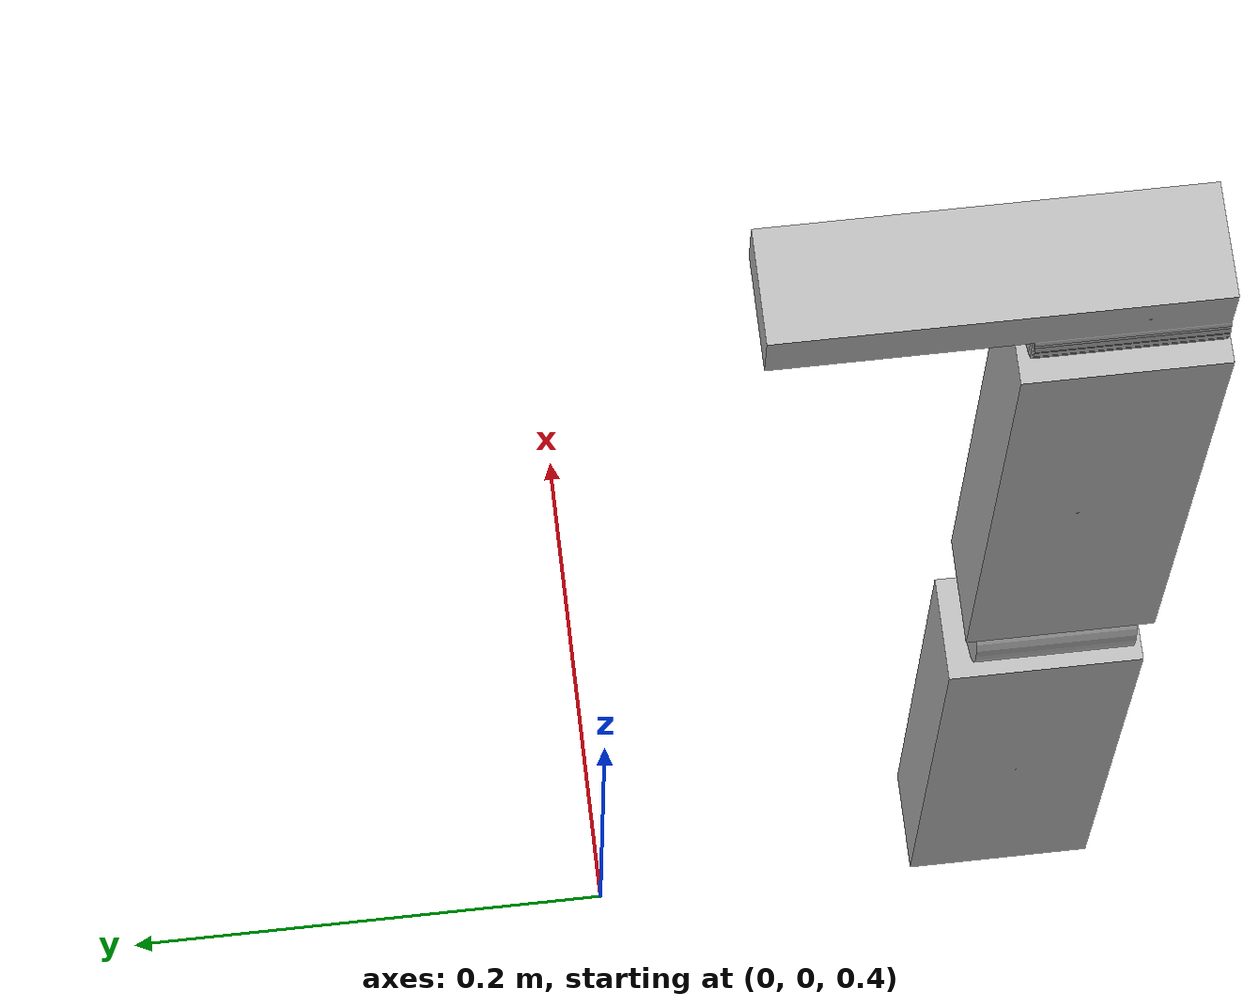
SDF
<?xml version="1.0" ?>
<sdf version="1.6">
	<model name="Arm">
		<link name="lowerArm">
			<self_collide>false</self_collide>
			<pose frame="">0.0 -0.16341575352272517 0.5946287977671405 0.0 -0.0 0.0</pose>
			<inertial>
				<pose frame="">0.0 0.0 0.0 0 0 0</pose>
				<mass>6.080200813641378</mass>
				<inertia>
					<ixx>2.3511051267027603</ixx>
					<ixy>-1.2940404303662944e-18</ixy>
					<ixz>0.00590953764285824</ixz>
					<iyy>2.1868753098141194</iyy>
					<iyz>-7.139533408917487e-19</iyz>
					<izz>0.16581174537619395</izz>
				</inertia>
			</inertial>
			<visual name="lowerArm_visual">
				<geometry>
					<mesh>
						<uri>model://Arm/meshes/CAD/lowerArm.stl</uri>
						<scale>0.001 0.001 0.001</scale>
					</mesh>
				</geometry>
			</visual>
		</link>
		<link name="upperArm">
			<self_collide>false</self_collide>
			<pose frame="">-1.7055765121060407e-19 -0.1650106746881686 0.861734873884391 0.0 -0.0 0.0</pose>
			<inertial>
				<pose frame="">0.0 0.0 0.0 0 0 0</pose>
				<mass>6.540615957274627</mass>
				<inertia>
					<ixx>5.087882934773361</ixx>
					<ixy>1.3386625141720287e-19</ixy>
					<ixz>0.009300558157396544</ixz>
					<iyy>4.908041387324462</iyy>
					<iyz>2.454214609315386e-19</iyz>
					<izz>0.18149079140871663</izz>
				</inertia>
			</inertial>
			<visual name="upperArm_visual">
				<geometry>
					<mesh>
						<uri>model://Arm/meshes/CAD/upperArm.stl</uri>
						<scale>0.001 0.001 0.001</scale>
					</mesh>
				</geometry>
			</visual>
		</link>
		<link name="chest">
			<self_collide>false</self_collide>
			<pose frame="">-7.731645312548676e-19 -0.13419849355806698 1.0258472745100917 0.0 -0.0 0.0</pose>
			<inertial>
				<pose frame="">0.0 0.0 0.0 0 0 0</pose>
				<mass>1.4428392018097171</mass>
				<inertia>
					<ixx>1.5473210686112024</ixx>
					<ixy>-1.7848833522293717e-19</ixy>
					<ixz>0.0019824514637570294</ixz>
					<iyy>1.518859157485383</iyy>
					<iyz>1.227107304657693e-18</iyz>
					<izz>0.028791206346931466</izz>
				</inertia>
			</inertial>
			<visual name="chest_visual">
				<geometry>
					<mesh>
						<uri>model://Arm/meshes/CAD/chest.stl</uri>
						<scale>0.001 0.001 0.001</scale>
					</mesh>
				</geometry>
			</visual>
		</link>
		<joint name="offset" type="fixed">
		  <parent>world</parent>
		  <child>chest</child>
		</joint>
		<joint name="shoulder" type="revolute">
			<parent>chest</parent>
			<child>upperArm</child>
			<pose frame="">-2.049888398039709e-18 -0.03198932824736016 0.14526514112107833 0 0 0</pose>
			<axis>
				<xyz>0.0 -1.0 0.0</xyz>
			d	<limit>
					<lower>0.0</lower>
					<upper>0.0</upper>
				</limit>
				<use_parent_model_frame>0</use_parent_model_frame>
			</axis>
		</joint>
		<joint name="elbow" type="revolute">
			<parent>lowerArm</parent>
			<child>upperArm</child>
			<pose frame="">1.7055765121060407e-19 -0.0299893253118314 -0.141734873884391 0 0 0</pose>
			<axis>
				<xyz>0.0 -1.0 0.0</xyz>
				<limit>
					<lower>0.0</lower>
					<upper>0.0</upper>
				</limit>
				<use_parent_model_frame>0</use_parent_model_frame>
			</axis>
		</joint>
		<plugin filename="libgazebo_ros_muscle_interface.so" name="muscle_interface_plugin"/>
		<muscles>model://Arm/muscles.osim</muscles>
	</model>
</sdf>
